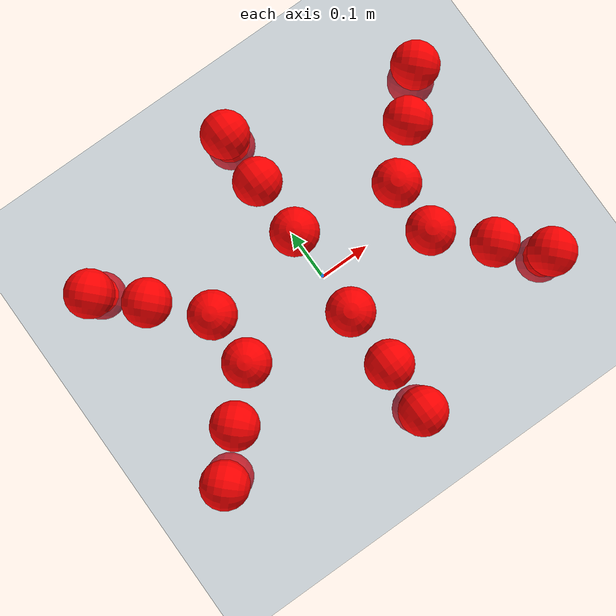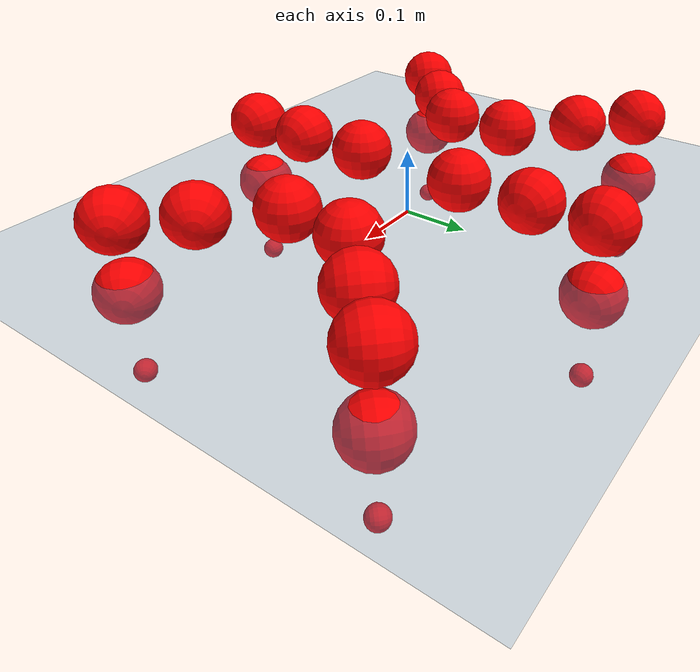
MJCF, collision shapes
<mujoco model="Golem">
  <compiler angle="radian" assetdir="assets" balanceinertia="true" inertiafromgeom="false"/>

  <option timestep="0.005" density="1.2" viscosity="2e-05"/>

  <size nkey="1"/>

  <visual>
    <quality shadowsize="8192"/>
    <map shadowclip="0.5"/>
  </visual>

  <default>
    <default class="/">
      <joint armature="0.01" damping="0.01" frictionloss="0.01"/>
      <geom contype="0" conaffinity="0" group="1" solref="-1000 -80"/>
      <site size="0.01 0.005 0.005" group="5"/>
      <general forcelimited="true" biastype="affine" gainprm="25" biasprm="0 -25 -0.5"/>
      <default class="visual">
        <geom type="mesh" group="2"/>
      </default>
      <default class="collision">
        <geom group="3"/>
      </default>
      <default class="foot">
        <geom size="0.01 0 0" condim="6" group="4" priority="1" solimp="0.015 1 0.01"/>
      </default>
      <default class="reward_collision_sphere">
        <geom group="5" rgba="1 0 0 1"/>
      </default>
    </default>
  </default>

  <asset>
    <texture type="skybox" colorspace="auto" name="//unnamed_texture_0" builtin="gradient" rgb1="0.95 0.95 0.95" rgb2="0.95 0.95 0.95" width="100" height="600"/>
    <texture type="2d" colorspace="auto" name="texplane" builtin="checker" rgb1="0.345 0.575 0.748" rgb2="0.345 0.575 0.748" markrgb="1 1 1" width="512" height="512"/>
    <material name="MatPlane" class="/" texture="texplane" texuniform="true" texrepeat="2 2" specular="0.9"/>
    <mesh name="body" class="/" file="body.stl" scale="0.001 0.001 0.001"/>
    <mesh name="coxa" class="/" file="coxa.stl" scale="0.001 0.001 0.001"/>
    <mesh name="femur" class="/" file="femur.stl" scale="0.001 0.001 0.001"/>
    <mesh name="tibia" class="/" file="tibia.stl" scale="0.001 0.001 0.001"/>
    <mesh name="tarsus" class="/" file="tarsus.stl" scale="0.001 0.001 0.001"/>
  </asset>

  <worldbody>
    <geom name="floor" class="/" size="100 100 0.125" type="plane" group="0" material="MatPlane"/>
    <light name="toplight_shadow" class="/" pos="0 0 5" dir="0.0990148 0.0990148 -0.990148" type="directional" ambient="0.04 0.04 0.04" diffuse="0.55 0.55 0.55" specular="0.12 0.12 0.12"/>
    <light name="toplight_fill" class="/" pos="0 0 5" dir="0.0990148 0.0990148 -0.990148" type="directional" castshadow="false" ambient="0.04 0.04 0.04" diffuse="0.3 0.3 0.3" specular="0.08 0.08 0.08"/>
    <body name="trunk" pos="0.00115729 0.00283715 0.00280285" quat="1 -7.18971e-06 6.54468e-06 4.60867e-06">
      <inertial pos="0.00167292 -5.56311e-05 -0.0020559" quat="0.999993 -0.00192075 0.000329307 -0.00311154" mass="5.67842" diaginertia="0.0349184 0.00831297 0.023184"/>
      <joint name="//unnamed_joint_0" type="free"/>
      <geom name="//unnamed_geom_1" class="/" pos="0 0 0.0756081" quat="1 0 0 0" type="mesh" rgba="0.9 0.9 0.9 1" mesh="body"/>
      <site name="imu" class="/" pos="0.176837 0.00929644 0.125837" size="0.0114629"/>
      <camera name="track" class="/" pos="0 -1.92029 0" quat="0.707107 0.707107 0 0" mode="trackcom"/>
      <camera name="ego_camera" class="/" pos="0.168653 0 0.118138" quat="-0.5 -0.5 0.5 0.5"/>
      <body name="coxa_RR" pos="-0.231088 -0.0805409 0.0760025" quat="0.382383 0.000117854 0.000276187 -0.924004">
        <inertial pos="-0.000286167 -0.000731485 -0.00224604" quat="0.999911 -0.00476179 -0.00743838 0.0100402" mass="0.29947" diaginertia="0.0356404 0.00791858 0.0223748"/>
        <joint name="coxa_joint_RR" class="/" pos="0 0 0" axis="-0.0047923 -0.0070171 -0.999964" range="-3.1459 3.14748" armature="0.010346" damping="0" frictionloss="0.0113847"/>
        <geom name="//unnamed_geom_2" class="/" type="mesh" rgba="0.2 0.2 0.2 1" mesh="coxa"/>
        <geom name="//unnamed_geom_3" class="reward_collision_sphere" size="0.0458514" pos="-0.03892 0 0"/>
        <body name="femur_RR" pos="0.0753149 -0.00186381 -0.00526766" quat="0.499977 -0.5 0.500028 0.499994">
          <inertial pos="-0.00273453 -0.00231476 0.000427985" quat="0.999966 0.00297901 0.00635256 0.00432592" mass="0.302791" diaginertia="0.0368928 0.00834152 0.0231548"/>
          <joint name="femur_joint_RR" class="/" pos="0 0 0" axis="-0.0027819 0.006493 -0.999975" range="-3.17782 3.08456" armature="0.0107862" damping="0.00805428" frictionloss="0.0127054"/>
          <geom name="//unnamed_geom_4" class="/" type="mesh" rgba="0.9 0.9 0.9 1" mesh="femur"/>
          <geom name="//unnamed_geom_5" class="reward_collision_sphere" size="0.0458514"/>
          <body name="tibia_RR" pos="-0.00283504 -0.105091 0.000887768" quat="-3.81579e-06 1 -9.45366e-05 -0.000378197">
            <inertial pos="-0.00193878 -0.000563454 0.000848655" quat="0.999995 0.00170989 -0.00264578 -0.000607336" mass="0.299375" diaginertia="0.0358285 0.00774173 0.0214124"/>
            <joint name="tibia_joint_RR" class="/" pos="0 0 0" axis="0.00767241 0.00506861 0.999958" range="-3.08809 3.1954" armature="0.0115183" damping="0.00170759" frictionloss="0.0115371"/>
            <geom name="//unnamed_geom_6" class="/" type="mesh" rgba="0.2 0.2 0.2 1" mesh="tibia"/>
            <geom name="//unnamed_geom_7" class="reward_collision_sphere" size="0.0458514"/>
            <body name="tarsus_RR" pos="0.116085 -0.000560052 0.00152092" quat="1 -3.38505e-05 -8.45887e-05 -8.03187e-05">
              <inertial pos="0.0802572 5.77678e-05 0.00272632" quat="0.498992 0.504613 0.498748 0.497617" mass="0.304175" diaginertia="0.0372104 0.00840166 0.0232153"/>
              <joint name="tarsus_joint_RR" class="/" pos="0 0 0" axis="-0.00390061 0.00143221 0.999991" range="-3.178 3.1949" armature="0.0107103" damping="0.0350164" frictionloss="0.00992108"/>
              <geom name="//unnamed_geom_8" class="/" type="mesh" rgba="0.9 0.9 0.9 1" mesh="tarsus"/>
              <geom name="foot_1" class="foot" size="0.0113023" pos="0.145301 0 0" quat="0 -0.707107 0 0.707107"/>
              <geom name="//unnamed_geom_10" class="reward_collision_sphere" size="0.0458514"/>
              <geom name="//unnamed_geom_11" class="reward_collision_sphere" size="0.0171943" pos="0.139463 0 0"/>
              <site name="foot_1" class="foot" pos="0.145301 0 0" quat="0 -0.707107 0 0.707107" size="0.0114629"/>
            </body>
          </body>
        </body>
      </body>
      <body name="coxa_RM" pos="0.000339458 -0.126146 0.0783174" quat="0.706828 -0.00139016 0.000146793 -0.707384">
        <inertial pos="0.00270844 -7.91844e-05 -0.00247733" quat="0.999915 -0.00346221 -0.0104128 0.00698689" mass="0.291285" diaginertia="0.0354167 0.00805268 0.02377"/>
        <joint name="coxa_joint_RM" class="/" pos="0 0 0" axis="-0.00296458 -0.00147314 -0.999995" stiffness="0.00441142" range="-3.18361 3.14232" armature="0.0113893" damping="0.00313838" frictionloss="0.0114304"/>
        <geom name="//unnamed_geom_12" class="/" type="mesh" rgba="0.2 0.2 0.2 1" mesh="coxa"/>
        <geom name="//unnamed_geom_13" class="reward_collision_sphere" size="0.0458514" pos="-0.03892 0 0"/>
        <body name="femur_RM" pos="0.0772209 0.00196388 -0.00161135" quat="0.500363 -0.499949 0.500243 0.499444">
          <inertial pos="0.000811305 -0.00260529 -0.00020706" quat="0.999948 -0.00845021 -0.00268936 -0.00502453" mass="0.307435" diaginertia="0.0370761 0.00799877 0.0232997"/>
          <joint name="femur_joint_RM" class="/" pos="0 0 0" axis="0.0135737 0.00344907 -0.999902" stiffness="0.00873873" range="-3.15923 3.13211" armature="0.0099621" damping="0.0268464" frictionloss="0.0115725"/>
          <geom name="//unnamed_geom_14" class="/" type="mesh" rgba="0.9 0.9 0.9 1" mesh="femur"/>
          <geom name="//unnamed_geom_15" class="reward_collision_sphere" size="0.0458514"/>
          <body name="tibia_RM" pos="0.00063564 -0.10213 0.000754967" quat="0.000139048 1 0.000369306 -0.000195649">
            <inertial pos="0.00276569 -0.000969719 -0.000761224" quat="0.999961 -0.00749011 -0.00276826 0.00381733" mass="0.286183" diaginertia="0.0358541 0.00800602 0.0224381"/>
            <joint name="tibia_joint_RM" class="/" pos="0 0 0" axis="0.000511667 -0.00216816 0.999998" range="-3.17489 3.14107" armature="0.0113844" damping="0.0141697" frictionloss="0.0119255"/>
            <geom name="//unnamed_geom_16" class="/" type="mesh" rgba="0.2 0.2 0.2 1" mesh="tibia"/>
            <geom name="//unnamed_geom_17" class="reward_collision_sphere" size="0.0458514"/>
            <body name="tarsus_RM" pos="0.11296 -9.58292e-05 0.00304879" quat="1 -5.068e-05 1.01804e-05 0.00030793">
              <inertial pos="0.0792226 -0.0024408 0.00267589" quat="0.5032 0.496572 0.500689 0.499517" mass="0.306207" diaginertia="0.0360247 0.00790063 0.0224033"/>
              <joint name="tarsus_joint_RM" class="/" pos="0 0 0" axis="-0.00356978 -3.96473e-05 0.999994" range="-3.08317 3.11114" armature="0.0128432" damping="0.0112329" frictionloss="0.0113484"/>
              <geom name="//unnamed_geom_18" class="/" type="mesh" rgba="0.9 0.9 0.9 1" mesh="tarsus"/>
              <geom name="foot_2" class="foot" size="0.0120558" pos="0.145301 0 0" quat="0 -0.707107 0 0.707107"/>
              <geom name="//unnamed_geom_20" class="reward_collision_sphere" size="0.0458514"/>
              <geom name="//unnamed_geom_21" class="reward_collision_sphere" size="0.0171943" pos="0.139463 0 0"/>
              <site name="foot_2" class="foot" pos="0.145301 0 0" quat="0 -0.707107 0 0.707107" size="0.0114629"/>
            </body>
          </body>
        </body>
      </body>
      <body name="coxa_RF" pos="0.230125 -0.078992 0.0769599" quat="0.924013 -0.000228811 -0.00015798 -0.382362">
        <inertial pos="-0.00142787 0.00283549 -0.000843808" quat="0.999999 0.00109275 0.00073108 -0.00045316" mass="0.300351" diaginertia="0.0368795 0.00835421 0.0222498"/>
        <joint name="coxa_joint_RF" class="/" pos="0 0 0" axis="0.00383824 -0.00184402 -0.999991" range="-3.15659 3.15918" armature="0.0126824" damping="0.0164488" frictionloss="0.0108671"/>
        <geom name="//unnamed_geom_22" class="/" type="mesh" rgba="0.2 0.2 0.2 1" mesh="coxa"/>
        <geom name="//unnamed_geom_23" class="reward_collision_sphere" size="0.0458514" pos="-0.03892 0 0"/>
        <body name="femur_RF" pos="0.0788879 -0.00179551 0.00082553" quat="0.499977 -0.500888 0.499777 0.499357">
          <inertial pos="0.00248927 -0.00288269 -0.00109408" quat="0.999923 -0.00839992 0.00105457 0.00912169" mass="0.29025" diaginertia="0.0367082 0.00760903 0.0226678"/>
          <joint name="femur_joint_RF" class="/" pos="0 0 0" axis="-0.000965903 -0.0012332 -0.999999" stiffness="0.0005744" range="-3.15909 3.17242" armature="0.0101955" damping="0.0121192" frictionloss="0.0128634"/>
          <geom name="//unnamed_geom_24" class="/" type="mesh" rgba="0.9 0.9 0.9 1" mesh="femur"/>
          <geom name="//unnamed_geom_25" class="reward_collision_sphere" size="0.0458514"/>
          <body name="tibia_RF" pos="-0.00205069 -0.102898 -1.79999e-05" quat="-0.000183873 1 0.000237509 -6.95677e-06">
            <inertial pos="-0.000477552 0.00102937 -0.000564019" quat="1 -4.71858e-05 0.00018231 0.000160773" mass="0.309215" diaginertia="0.03571 0.00851055 0.0228822"/>
            <joint name="tibia_joint_RF" class="/" pos="0 0 0" axis="-0.00248113 -0.00313969 0.999992" range="-3.16241 3.12082" armature="0.0103452" damping="0.00477815" frictionloss="0.0113562"/>
            <geom name="//unnamed_geom_26" class="/" type="mesh" rgba="0.2 0.2 0.2 1" mesh="tibia"/>
            <geom name="//unnamed_geom_27" class="reward_collision_sphere" size="0.0458514"/>
            <body name="tarsus_RF" pos="0.110771 0.00105184 0.00257557" quat="1 0.000376692 -0.000401483 0.000383509">
              <inertial pos="0.0775015 0.000562948 -0.000240348" quat="0.496208 0.500864 0.501796 0.501112" mass="0.304616" diaginertia="0.0368069 0.00811328 0.0238167"/>
              <joint name="tarsus_joint_RF" class="/" pos="0 0 0" axis="-0.0107898 -0.0107352 0.999884" range="-3.18624 3.11805" armature="0.0130198" damping="0.0130031" frictionloss="0.00988624"/>
              <geom name="//unnamed_geom_28" class="/" type="mesh" rgba="0.9 0.9 0.9 1" mesh="tarsus"/>
              <geom name="foot_3" class="foot" size="0.0124491" pos="0.145301 0 0" quat="0 -0.707107 0 0.707107"/>
              <geom name="//unnamed_geom_30" class="reward_collision_sphere" size="0.0458514"/>
              <geom name="//unnamed_geom_31" class="reward_collision_sphere" size="0.0171943" pos="0.139463 0 0"/>
              <site name="foot_3" class="foot" pos="0.145301 0 0" quat="0 -0.707107 0 0.707107" size="0.0114629"/>
            </body>
          </body>
        </body>
      </body>
      <body name="coxa_LR" pos="-0.231686 0.0795974 0.0784405" quat="0.382845 -0.000283318 0.000107575 0.923813">
        <inertial pos="-0.00135171 0.0024612 -8.30565e-06" quat="0.99999 -0.00179237 0.00144692 0.00372581" mass="0.300483" diaginertia="0.0376263 0.0084462 0.0242969"/>
        <joint name="coxa_joint_LR" class="/" pos="0 0 0" axis="0.00759045 0.00317711 -0.999966" stiffness="0.0108274" range="-3.16641 3.08351" armature="0.00983082" damping="0" frictionloss="0.0101251"/>
        <geom name="//unnamed_geom_32" class="/" type="mesh" rgba="0.2 0.2 0.2 1" mesh="coxa"/>
        <geom name="//unnamed_geom_33" class="reward_collision_sphere" size="0.0458514" pos="-0.03892 0 0"/>
        <body name="femur_LR" pos="0.0801743 -0.00199836 0.00102367" quat="0.50017 -0.499886 0.50017 0.499775">
          <inertial pos="-0.00212007 -0.00104211 0.000769081" quat="0.9999 0.0101163 0.00132697 -0.00974209" mass="0.300671" diaginertia="0.0366327 0.00834361 0.0231653"/>
          <joint name="femur_joint_LR" class="/" pos="0 0 0" axis="0.0136676 0.0033858 0.999901" range="-3.10829 3.1601" armature="0.0117285" damping="0" frictionloss="0.0111284"/>
          <geom name="//unnamed_geom_34" class="/" type="mesh" rgba="0.9 0.9 0.9 1" mesh="femur"/>
          <geom name="//unnamed_geom_35" class="reward_collision_sphere" size="0.0458514"/>
          <body name="tibia_LR" pos="-0.00207232 -0.104011 0.00151204" quat="-0.000566256 1 0.000391891 -0.000467894">
            <inertial pos="-0.000860434 -0.000877595 0.000417301" quat="1 0.0005093 9.17346e-05 0.000209262" mass="0.318679" diaginertia="0.0375277 0.00828451 0.0240033"/>
            <joint name="tibia_joint_LR" class="/" pos="0 0 0" axis="0.0118966 -0.00486491 -0.999917" range="-3.19518 3.09174" armature="0.0119872" damping="0" frictionloss="0.0108757"/>
            <geom name="//unnamed_geom_36" class="/" type="mesh" rgba="0.2 0.2 0.2 1" mesh="tibia"/>
            <geom name="//unnamed_geom_37" class="reward_collision_sphere" size="0.0458514"/>
            <body name="tarsus_LR" pos="0.112799 0.000954228 0.00261574" quat="1 0.000105483 0.000671682 8.21626e-05">
              <inertial pos="0.0789173 0.000124167 -0.000662188" quat="0.498511 0.50173 0.499741 0.500013" mass="0.297122" diaginertia="0.0377965 0.0080681 0.0238237"/>
              <joint name="tarsus_joint_LR" class="/" pos="0 0 0" axis="0.00575255 -0.00382815 -0.999976" range="-3.18214 3.0968" armature="0.0109705" damping="0" frictionloss="0.0126275"/>
              <geom name="//unnamed_geom_38" class="/" type="mesh" rgba="0.9 0.9 0.9 1" mesh="tarsus"/>
              <geom name="foot_4" class="foot" size="0.0127566" pos="0.145301 0 0" quat="0.707107 0 -0.707107 0"/>
              <geom name="//unnamed_geom_40" class="reward_collision_sphere" size="0.0458514"/>
              <geom name="//unnamed_geom_41" class="reward_collision_sphere" size="0.0171943" pos="0.139463 0 0"/>
              <site name="foot_4" class="foot" pos="0.145301 0 0" quat="0.707107 0 -0.707107 0" size="0.0114629"/>
            </body>
          </body>
        </body>
      </body>
      <body name="coxa_LM" pos="0.00199516 0.127418 0.0774566" quat="0.706551 0.000925494 0.00102582 0.70766">
        <inertial pos="0.00162329 -0.00210834 -0.00171276" quat="0.999902 0.00166121 0.0138289 -0.00145122" mass="0.29371" diaginertia="0.0345392 0.0078901 0.0224583"/>
        <joint name="coxa_joint_LM" class="/" pos="0 0 0" axis="0.000774256 0.000941795 -0.999999" range="-3.09626 3.11676" armature="0.0129227" damping="0.0247641" frictionloss="0.0128164"/>
        <geom name="//unnamed_geom_42" class="/" type="mesh" rgba="0.2 0.2 0.2 1" mesh="coxa"/>
        <geom name="//unnamed_geom_43" class="reward_collision_sphere" size="0.0458514" pos="-0.03892 0 0"/>
        <body name="femur_LM" pos="0.0745182 0.00185211 0.000493591" quat="0.49972 -0.500489 0.500662 0.499126">
          <inertial pos="0.00272012 -0.00223774 0.00047403" quat="0.999982 0.00425494 -0.00408487 -0.00116577" mass="0.306402" diaginertia="0.0386434 0.00827994 0.0240282"/>
          <joint name="femur_joint_LM" class="/" pos="0 0 0" axis="0.015128 -0.000835381 0.999885" stiffness="0.00301199" range="-3.14156 3.09289" armature="0.0129618" damping="0" frictionloss="0.0117631"/>
          <geom name="//unnamed_geom_44" class="/" type="mesh" rgba="0.9 0.9 0.9 1" mesh="femur"/>
          <geom name="//unnamed_geom_45" class="reward_collision_sphere" size="0.0458514"/>
          <body name="tibia_LM" pos="-0.00344834 -0.103099 -0.00158052" quat="-0.000122803 1 0.000148542 0.000149759">
            <inertial pos="0.000550695 -0.00123264 0.00174002" quat="0.999903 0.000831441 0.00274031 0.0136106" mass="0.292677" diaginertia="0.037559 0.0083211 0.0235122"/>
            <joint name="tibia_joint_LM" class="/" pos="0 0 0" axis="-0.00545024 0.00409858 -0.999977" range="-3.13448 3.17107" armature="0.0123357" damping="0.0117874" frictionloss="0.00985876"/>
            <geom name="//unnamed_geom_46" class="/" type="mesh" rgba="0.2 0.2 0.2 1" mesh="tibia"/>
            <geom name="//unnamed_geom_47" class="reward_collision_sphere" size="0.0458514"/>
            <body name="tarsus_LM" pos="0.112148 -4.46066e-05 0.00253184" quat="1 -3.04478e-05 -1.19262e-05 3.53437e-05">
              <inertial pos="0.0750205 0.0001207 -0.0027381" quat="0.500184 0.500009 0.500106 0.499701" mass="0.309554" diaginertia="0.0354532 0.00804332 0.0235994"/>
              <joint name="tarsus_joint_LM" class="/" pos="0 0 0" axis="-0.00484212 -0.00188838 -0.999986" range="-3.12917 3.15733" armature="0.0125259" damping="0.011011" frictionloss="0.0128136"/>
              <geom name="//unnamed_geom_48" class="/" type="mesh" rgba="0.9 0.9 0.9 1" mesh="tarsus"/>
              <geom name="foot_5" class="foot" size="0.0125748" pos="0.145301 0 0" quat="0.707107 0 -0.707107 0"/>
              <geom name="//unnamed_geom_50" class="reward_collision_sphere" size="0.0458514"/>
              <geom name="//unnamed_geom_51" class="reward_collision_sphere" size="0.0171943" pos="0.139463 0 0"/>
              <site name="foot_5" class="foot" pos="0.145301 0 0" quat="0.707107 0 -0.707107 0" size="0.0114629"/>
            </body>
          </body>
        </body>
      </body>
      <body name="coxa_LF" pos="0.231542 0.0813287 0.0747879" quat="0.923915 -0.000195741 -0.0004997 0.382598">
        <inertial pos="0.000689866 -0.000765712 -0.00219576" quat="0.999908 -0.00563339 -0.0120068 0.00295646" mass="0.286999" diaginertia="0.0358321 0.00808124 0.0228437"/>
        <joint name="coxa_joint_LF" class="/" pos="0 0 0" axis="-0.00258714 0.00207003 -0.999995" stiffness="0.0215021" range="-3.19208 3.14915" armature="0.0123881" damping="0.0140725" frictionloss="0.0098802"/>
        <geom name="//unnamed_geom_52" class="/" type="mesh" rgba="0.2 0.2 0.2 1" mesh="coxa"/>
        <geom name="//unnamed_geom_53" class="reward_collision_sphere" size="0.0458514" pos="-0.03892 0 0"/>
        <body name="femur_LF" pos="0.0773224 -0.001238 0.000318042" quat="0.500005 -0.499791 0.499704 0.5005">
          <inertial pos="0.000690267 1.13867e-05 -0.000953331" quat="0.999981 0.00527416 0.00110697 -0.00300807" mass="0.295191" diaginertia="0.0360224 0.00801959 0.0218016"/>
          <joint name="femur_joint_LF" class="/" pos="0 0 0" axis="-0.000415136 -0.00357711 0.999994" range="-3.08325 3.14598" armature="0.0125504" damping="0.0151728" frictionloss="0.0108522"/>
          <geom name="//unnamed_geom_54" class="/" type="mesh" rgba="0.9 0.9 0.9 1" mesh="femur"/>
          <geom name="//unnamed_geom_55" class="reward_collision_sphere" size="0.0458514"/>
          <body name="tibia_LF" pos="-0.00121867 -0.103018 0.00284789" quat="-0.000236999 1 -0.000121941 0.000359039">
            <inertial pos="6.23469e-05 0.00263322 0.00253077" quat="0.999975 -0.00110339 -0.00636006 0.00290783" mass="0.292147" diaginertia="0.0361741 0.00808202 0.0231448"/>
            <joint name="tibia_joint_LF" class="/" pos="0 0 0" axis="-0.000510327 -0.00177635 -0.999998" range="-3.13436 3.11957" armature="0.00970519" damping="0" frictionloss="0.0130396"/>
            <geom name="//unnamed_geom_56" class="/" type="mesh" rgba="0.2 0.2 0.2 1" mesh="tibia"/>
            <geom name="//unnamed_geom_57" class="reward_collision_sphere" size="0.0458514"/>
            <body name="tarsus_LF" pos="0.116935 0.00177206 0.00104612" quat="1 8.26701e-05 0.000611652 -7.1618e-05">
              <inertial pos="0.0793225 -0.0010767 -0.00267709" quat="0.50847 0.503098 0.497541 0.490718" mass="0.317252" diaginertia="0.0369152 0.00854625 0.0242146"/>
              <joint name="tarsus_joint_LF" class="/" pos="0 0 0" axis="-0.0132141 -0.00343874 -0.999907" stiffness="0.0363678" range="-3.18842 3.19149" armature="0.0113576" damping="0.0195684" frictionloss="0.0120516"/>
              <geom name="//unnamed_geom_58" class="/" type="mesh" rgba="0.9 0.9 0.9 1" mesh="tarsus"/>
              <geom name="foot_6" class="foot" size="0.0111332" pos="0.145301 0 0" quat="0.707107 0 -0.707107 0"/>
              <geom name="//unnamed_geom_60" class="reward_collision_sphere" size="0.0458514"/>
              <geom name="//unnamed_geom_61" class="reward_collision_sphere" size="0.0171943" pos="0.139463 0 0"/>
              <site name="foot_6" class="foot" pos="0.145301 0 0" quat="0.707107 0 -0.707107 0" size="0.0114629"/>
            </body>
          </body>
        </body>
      </body>
    </body>
  </worldbody>

  <contact>
    <pair class="/" geom1="floor" geom2="foot_1" name="//unnamed_contact_0"/>
    <pair class="/" geom1="floor" geom2="foot_2" name="//unnamed_contact_1"/>
    <pair class="/" geom1="floor" geom2="foot_3" name="//unnamed_contact_2"/>
    <pair class="/" geom1="floor" geom2="foot_4" name="//unnamed_contact_3"/>
    <pair class="/" geom1="floor" geom2="foot_5" name="//unnamed_contact_4"/>
    <pair class="/" geom1="floor" geom2="foot_6" name="//unnamed_contact_5"/>
  </contact>

  <actuator>
    <general name="coxa_joint_RR" class="/" joint="coxa_joint_RR" forcerange="-8.1059 8.1059" gainprm="27.1156" biasprm="0 -27.1156 -0.598951"/>
    <general name="femur_joint_RR" class="/" joint="femur_joint_RR" forcerange="-8.42467 8.42467" gainprm="27.1156" biasprm="0 -27.1156 -0.598951"/>
    <general name="tibia_joint_RR" class="/" joint="tibia_joint_RR" forcerange="-8.50189 8.50189" gainprm="27.1156" biasprm="0 -27.1156 -0.598951"/>
    <general name="tarsus_joint_RR" class="/" joint="tarsus_joint_RR" forcerange="-9.15739 9.15739" gainprm="27.1156" biasprm="0 -27.1156 -0.598951"/>
    <general name="coxa_joint_RM" class="/" joint="coxa_joint_RM" forcerange="-8.09059 8.09059" gainprm="27.1156" biasprm="0 -27.1156 -0.598951"/>
    <general name="femur_joint_RM" class="/" joint="femur_joint_RM" forcerange="-8.23734 8.23734" gainprm="27.1156" biasprm="0 -27.1156 -0.598951"/>
    <general name="tibia_joint_RM" class="/" joint="tibia_joint_RM" forcerange="-7.48112 7.48112" gainprm="27.1156" biasprm="0 -27.1156 -0.598951"/>
    <general name="tarsus_joint_RM" class="/" joint="tarsus_joint_RM" forcerange="-8.08146 8.08146" gainprm="27.1156" biasprm="0 -27.1156 -0.598951"/>
    <general name="coxa_joint_RF" class="/" joint="coxa_joint_RF" forcerange="-7.94106 7.94106" gainprm="27.1156" biasprm="0 -27.1156 -0.598951"/>
    <general name="femur_joint_RF" class="/" joint="femur_joint_RF" forcerange="-7.48447 7.48447" gainprm="27.1156" biasprm="0 -27.1156 -0.598951"/>
    <general name="tibia_joint_RF" class="/" joint="tibia_joint_RF" forcerange="-8.19662 8.19662" gainprm="27.1156" biasprm="0 -27.1156 -0.598951"/>
    <general name="tarsus_joint_RF" class="/" joint="tarsus_joint_RF" forcerange="-9.23866 9.23866" gainprm="27.1156" biasprm="0 -27.1156 -0.598951"/>
    <general name="coxa_joint_LR" class="/" joint="coxa_joint_LR" forcerange="-8.43159 8.43159" gainprm="27.1156" biasprm="0 -27.1156 -0.598951"/>
    <general name="femur_joint_LR" class="/" joint="femur_joint_LR" forcerange="-8.07784 8.07784" gainprm="27.1156" biasprm="0 -27.1156 -0.598951"/>
    <general name="tibia_joint_LR" class="/" joint="tibia_joint_LR" forcerange="-8.66368 8.66368" gainprm="27.1156" biasprm="0 -27.1156 -0.598951"/>
    <general name="tarsus_joint_LR" class="/" joint="tarsus_joint_LR" forcerange="-9.01361 9.01361" gainprm="27.1156" biasprm="0 -27.1156 -0.598951"/>
    <general name="coxa_joint_LM" class="/" joint="coxa_joint_LM" forcerange="-9.06124 9.06124" gainprm="27.1156" biasprm="0 -27.1156 -0.598951"/>
    <general name="femur_joint_LM" class="/" joint="femur_joint_LM" forcerange="-8.43254 8.43254" gainprm="27.1156" biasprm="0 -27.1156 -0.598951"/>
    <general name="tibia_joint_LM" class="/" joint="tibia_joint_LM" forcerange="-8.66907 8.66907" gainprm="27.1156" biasprm="0 -27.1156 -0.598951"/>
    <general name="tarsus_joint_LM" class="/" joint="tarsus_joint_LM" forcerange="-8.06346 8.06346" gainprm="27.1156" biasprm="0 -27.1156 -0.598951"/>
    <general name="coxa_joint_LF" class="/" joint="coxa_joint_LF" forcerange="-8.26055 8.26055" gainprm="27.1156" biasprm="0 -27.1156 -0.598951"/>
    <general name="femur_joint_LF" class="/" joint="femur_joint_LF" forcerange="-8.25234 8.25234" gainprm="27.1156" biasprm="0 -27.1156 -0.598951"/>
    <general name="tibia_joint_LF" class="/" joint="tibia_joint_LF" forcerange="-8.58968 8.58968" gainprm="27.1156" biasprm="0 -27.1156 -0.598951"/>
    <general name="tarsus_joint_LF" class="/" joint="tarsus_joint_LF" forcerange="-7.48049 7.48049" gainprm="27.1156" biasprm="0 -27.1156 -0.598951"/>
  </actuator>

  <sensor>
    <gyro site="imu" name="imu_angular_velocity"/>
    <velocimeter site="imu" name="imu_linear_velocity"/>
    <framelinvel objtype="site" objname="foot_1" name="foot_1_global_linear_velocity"/>
    <framelinvel objtype="site" objname="foot_2" name="foot_2_global_linear_velocity"/>
    <framelinvel objtype="site" objname="foot_3" name="foot_3_global_linear_velocity"/>
    <framelinvel objtype="site" objname="foot_4" name="foot_4_global_linear_velocity"/>
    <framelinvel objtype="site" objname="foot_5" name="foot_5_global_linear_velocity"/>
    <framelinvel objtype="site" objname="foot_6" name="foot_6_global_linear_velocity"/>
  </sensor>

  <keyframe>
    <key name="home" qpos="0 0 0.1457 1 0 0 0 0 0 0 0 0 0 0 0 0 0 0 0 0 0 0 0 0 0 0 0 0 0 0 0"/>
  </keyframe>
</mujoco>
